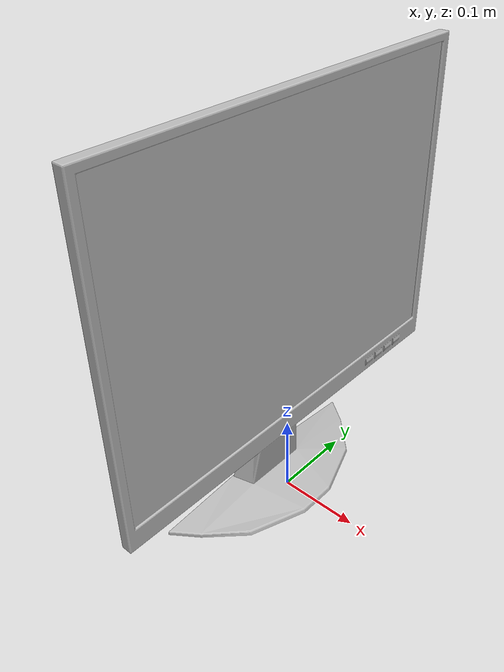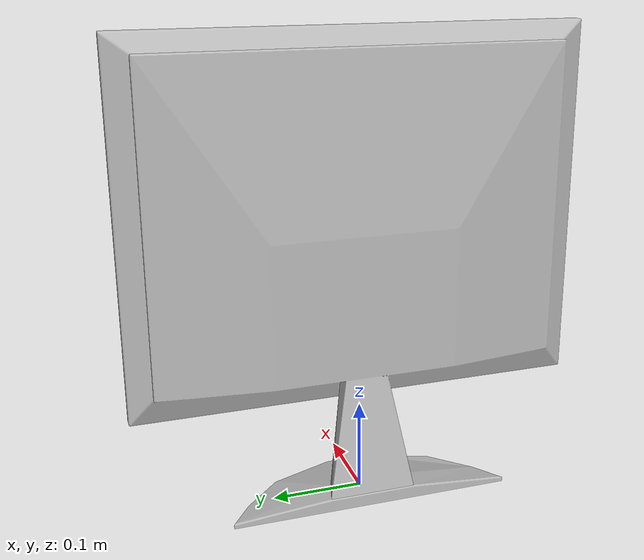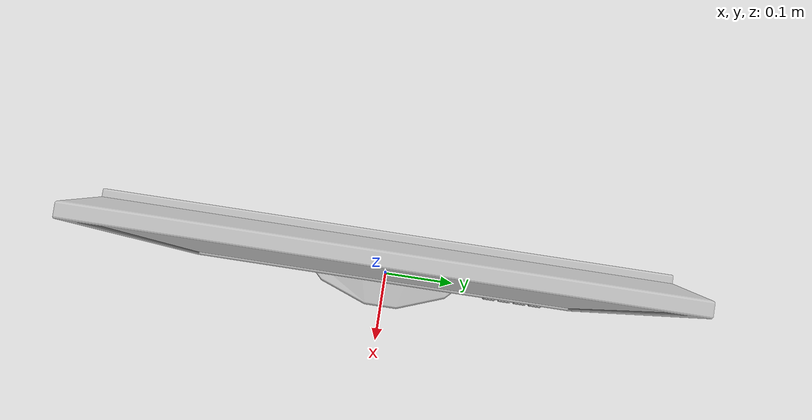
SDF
<?xml version='1.0'?>
<sdf version='1.4'>
  <model name='110'>
    <pose>0 0 0 0 0 0</pose>
    <static>true</static>
    <link name='link'>
      <collision name='collision'>
        <pose>0 0 0 0 0 0</pose>
        <geometry>
          <box>
            <size>0.0995171 0.5 2</size>
          </box>
        </geometry>
      </collision>
      <visual name='visual'>
        <pose>0 0 0 0 0 0</pose>
        <geometry>
          <mesh><uri>model://110/110.dae</uri></mesh>
        </geometry>
      </visual>
    </link>
  </model>
</sdf>
